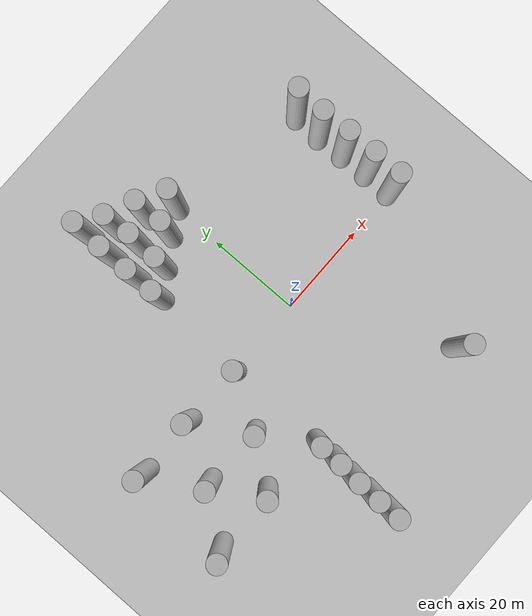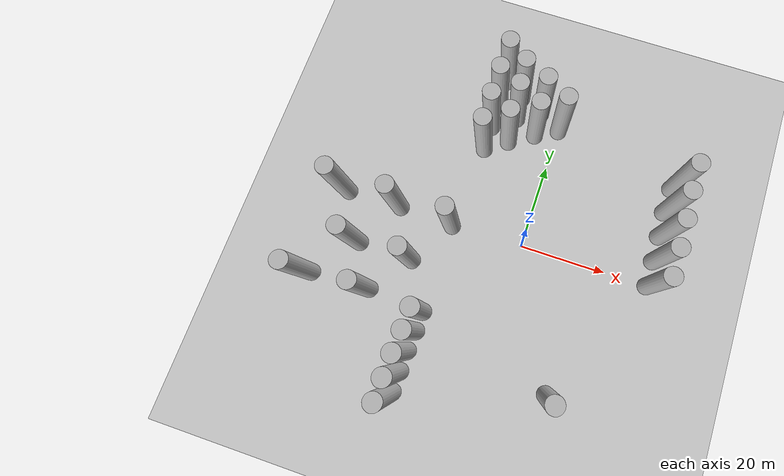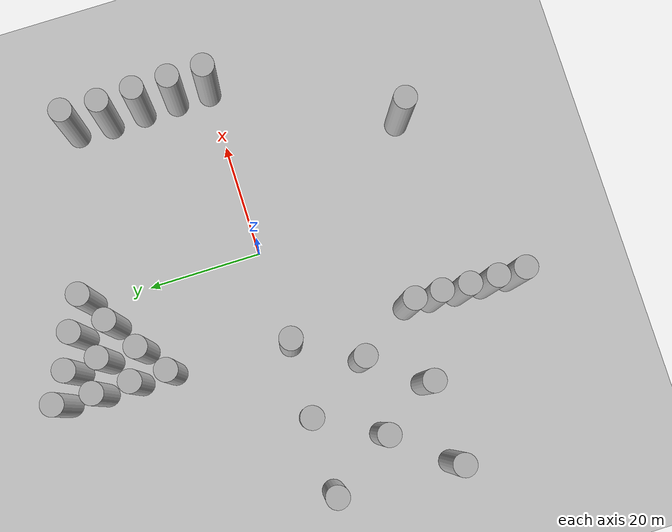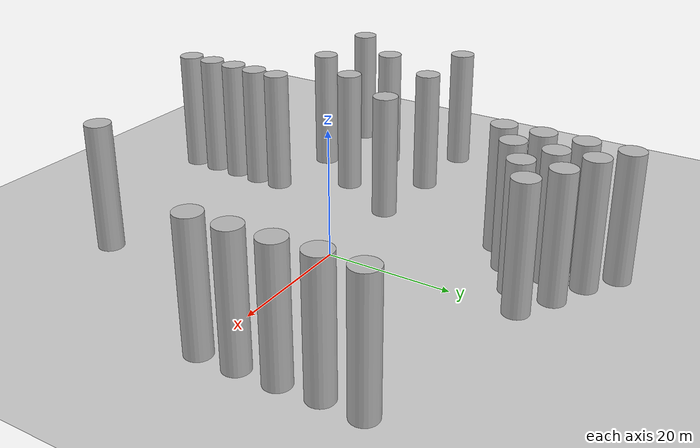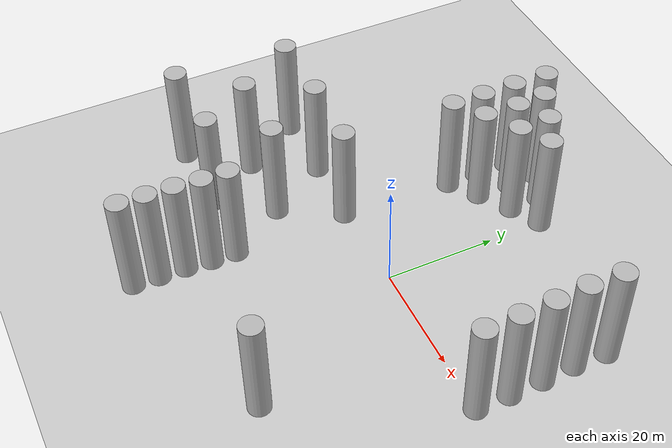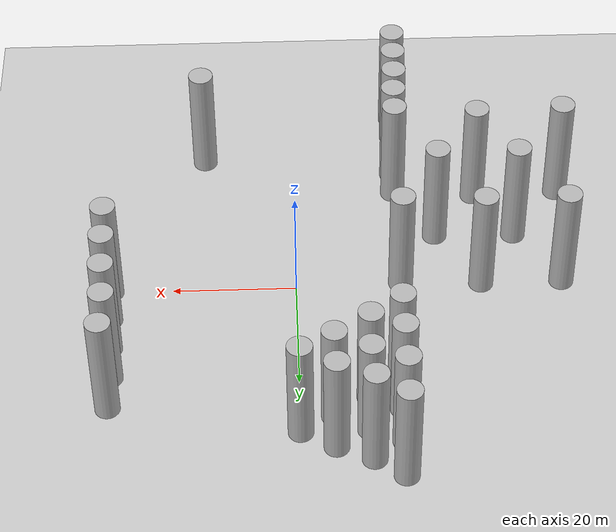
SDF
<sdf version="1.6">
 <world name="default">
  <scene><shadows>0</shadows><ambient>0.4 0.4 0.4 1</ambient><background>0.7 0.7 0.7 1</background></scene>
  <light name="sun" type="directional">
   <pose>0 0 10 0 -0 0</pose>
   <diffuse>0.8 0.8 0.8 1</diffuse>
   <specular>0.2 0.2 0.2 1</specular>
   <attenuation>
    <range>1000</range>
    <constant>0.9</constant>
    <linear>0.01</linear>
    <quadratic>0.001</quadratic>
   </attenuation>
   <direction>-0.5 0.1 -0.9</direction>
  </light>
  <model name="ground_plane">
   <static>1</static>
   <link name="link">
    <collision name="collision">
     <geometry><plane><normal>0 0 1</normal><size>100 100</size></plane></geometry>
     <surface><friction><ode><mu>100</mu><mu2>50</mu2></ode></friction></surface>
    </collision>
    <visual name="visual">
     <cast_shadows>0</cast_shadows>
     <geometry><plane><normal>0 0 1</normal><size>100 100</size></plane></geometry>
     <material>
      <script><uri>file://media/materials/scripts/gazebo.material</uri><name>Gazebo/Grey</name></script>
     </material>
    </visual>
   </link>
  </model>
  <model name="ground_plane">
   <static>1</static>
   <link name="link">
    <collision name="collision">
     <geometry><plane><normal>0 0 1</normal><size>100 100</size></plane></geometry>
     <surface><friction><ode><mu>100</mu><mu2>50</mu2></ode></friction></surface>
    </collision>
    <visual name="visual">
     <cast_shadows>0</cast_shadows>
     <geometry><plane><normal>0 0 1</normal><size>100 100</size></plane></geometry>
     <material>
      <script><uri>file://media/materials/scripts/gazebo.material</uri><name>Gazebo/Grey</name></script>
     </material>
    </visual>
   </link>
  </model>
  <model name="unit_cylinder_1">
   <static>1</static>
   <link name="link">
    <pose>0 0 10 0 -0 0</pose>
    <collision name="collision">
     <geometry><cylinder><radius>2</radius><length>20</length></cylinder></geometry>
    </collision>
    <visual name="visual"><geometry><cylinder><radius>2</radius><length>20</length></cylinder></geometry></visual>
   </link>
   <pose>15 -30 0 0 -0 0</pose>
  </model>
  <model name="unit_cylinder_2">
   <static>1</static>
   <link name="link">
    <pose>0 0 10 0 -0 0</pose>
    <collision name="collision">
     <geometry><cylinder><radius>2</radius><length>20</length></cylinder></geometry>
    </collision>
    <visual name="visual"><geometry><cylinder><radius>2</radius><length>20</length></cylinder></geometry></visual>
   </link>
   <pose>30 0 0 0 -0 0</pose>
  </model>
  <model name="unit_cylinder_3">
   <static>1</static>
   <link name="link">
    <pose>0 0 10 0 -0 0</pose>
    <collision name="collision">
     <geometry><cylinder><radius>2</radius><length>20</length></cylinder></geometry>
    </collision>
    <visual name="visual"><geometry><cylinder><radius>2</radius><length>20</length></cylinder></geometry></visual>
   </link>
   <pose>0 30 0 0 -0 0</pose>
  </model>
  <model name="unit_cylinder_4">
   <static>1</static>
   <link name="link">
    <pose>0 0 10 0 -0 0</pose>
    <collision name="collision">
     <geometry><cylinder><radius>2</radius><length>20</length></cylinder></geometry>
    </collision>
    <visual name="visual"><geometry><cylinder><radius>2</radius><length>20</length></cylinder></geometry></visual>
   </link>
   <pose>-30 0 0 0 -0 0</pose>
  </model>
  <gravity>0 0 -9.8</gravity>
  <magnetic_field>6e-06 2.3e-05 -4.2e-05</magnetic_field>
  <atmosphere type="adiabatic"/>
  <physics name="default_physics" default="0" type="ode">
   <max_step_size>0.001</max_step_size>
   <real_time_factor>1</real_time_factor>
   <real_time_update_rate>1000</real_time_update_rate>
  </physics>
  <audio><device>default</device></audio>
  <spherical_coordinates>
   <surface_model>EARTH_WGS84</surface_model>
   <latitude_deg>0</latitude_deg>
   <longitude_deg>0</longitude_deg>
   <elevation>0</elevation>
   <heading_deg>0</heading_deg>
  </spherical_coordinates>
  <model name="unit_cylinder_2_clone">
   <static>1</static>
   <link name="link">
    <pose>0 0 10 0 -0 0</pose>
    <collision name="collision">
     <geometry><cylinder><radius>2</radius><length>20</length></cylinder></geometry>
    </collision>
    <visual name="visual"><geometry><cylinder><radius>2</radius><length>20</length></cylinder></geometry></visual>
   </link>
   <pose>29.9802 6.03034 0 0 -0 0</pose>
  </model>
  <model name="unit_cylinder_2_clone_0">
   <static>1</static>
   <link name="link">
    <pose>0 0 10 0 -0 0</pose>
    <collision name="collision">
     <geometry><cylinder><radius>2</radius><length>20</length></cylinder></geometry>
    </collision>
    <visual name="visual"><geometry><cylinder><radius>2</radius><length>20</length></cylinder></geometry></visual>
   </link>
   <pose>29.8088 12.1248 0 0 -0 0</pose>
  </model>
  <model name="unit_cylinder_2_clone_1">
   <static>1</static>
   <link name="link">
    <pose>0 0 10 0 -0 0</pose>
    <collision name="collision">
     <geometry><cylinder><radius>2</radius><length>20</length></cylinder></geometry>
    </collision>
    <visual name="visual"><geometry><cylinder><radius>2</radius><length>20</length></cylinder></geometry></visual>
   </link>
   <pose>29.5008 18.1538 0 0 -0 0</pose>
  </model>
  <model name="unit_cylinder_2_clone_1_clone">
   <static>1</static>
   <link name="link">
    <pose>0 0 10 0 -0 0</pose>
    <collision name="collision">
     <geometry><cylinder><radius>2</radius><length>20</length></cylinder></geometry>
    </collision>
    <visual name="visual"><geometry><cylinder><radius>2</radius><length>20</length></cylinder></geometry></visual>
   </link>
   <pose>29.7126 24.2957 0 0 -0 0</pose>
  </model>
  <model name="unit_cylinder_2_clone_1_clone_0">
   <static>1</static>
   <link name="link">
    <pose>0 0 10 0 -0 0</pose>
    <collision name="collision">
     <geometry><cylinder><radius>2</radius><length>20</length></cylinder></geometry>
    </collision>
    <visual name="visual"><geometry><cylinder><radius>2</radius><length>20</length></cylinder></geometry></visual>
   </link>
   <pose>-5.3791 33.0461 0 0 -0 0</pose>
  </model>
  <model name="unit_cylinder_2_clone_1_clone_1">
   <static>1</static>
   <link name="link">
    <pose>0 0 10 0 -0 0</pose>
    <collision name="collision">
     <geometry><cylinder><radius>2</radius><length>20</length></cylinder></geometry>
    </collision>
    <visual name="visual"><geometry><cylinder><radius>2</radius><length>20</length></cylinder></geometry></visual>
   </link>
   <pose>-5.18838 27.1163 0 0 -0 0</pose>
  </model>
  <model name="unit_cylinder_2_clone_1_clone_2">
   <static>1</static>
   <link name="link">
    <pose>0 0 10 0 -0 0</pose>
    <collision name="collision">
     <geometry><cylinder><radius>2</radius><length>20</length></cylinder></geometry>
    </collision>
    <visual name="visual"><geometry><cylinder><radius>2</radius><length>20</length></cylinder></geometry></visual>
   </link>
   <pose>-11.0502 35.5543 0 0 -0 0</pose>
  </model>
  <model name="unit_cylinder_2_clone_1_clone_3">
   <static>1</static>
   <link name="link">
    <pose>0 0 10 0 -0 0</pose>
    <collision name="collision">
     <geometry><cylinder><radius>2</radius><length>20</length></cylinder></geometry>
    </collision>
    <visual name="visual"><geometry><cylinder><radius>2</radius><length>20</length></cylinder></geometry></visual>
   </link>
   <pose>-10.6247 29.9486 0 0 -0 0</pose>
  </model>
  <model name="unit_cylinder_2_clone_1_clone_4">
   <static>1</static>
   <link name="link">
    <pose>0 0 10 0 -0 0</pose>
    <collision name="collision">
     <geometry><cylinder><radius>2</radius><length>20</length></cylinder></geometry>
    </collision>
    <visual name="visual"><geometry><cylinder><radius>2</radius><length>20</length></cylinder></geometry></visual>
   </link>
   <pose>-10.7902 23.5692 0 0 -0 0</pose>
  </model>
  <model name="unit_cylinder_2_clone_1_clone_5">
   <static>1</static>
   <link name="link">
    <pose>0 0 10 0 -0 0</pose>
    <collision name="collision">
     <geometry><cylinder><radius>2</radius><length>20</length></cylinder></geometry>
    </collision>
    <visual name="visual"><geometry><cylinder><radius>2</radius><length>20</length></cylinder></geometry></visual>
   </link>
   <pose>-15.702 38.849 0 0 -0 0</pose>
  </model>
  <model name="unit_cylinder_2_clone_1_clone_6">
   <static>1</static>
   <link name="link">
    <pose>0 0 10 0 -0 0</pose>
    <collision name="collision">
     <geometry><cylinder><radius>2</radius><length>20</length></cylinder></geometry>
    </collision>
    <visual name="visual"><geometry><cylinder><radius>2</radius><length>20</length></cylinder></geometry></visual>
   </link>
   <pose>-15.8516 32.3302 0 0 -0 0</pose>
  </model>
  <model name="unit_cylinder_2_clone_1_clone_7">
   <static>1</static>
   <link name="link">
    <pose>0 0 10 0 -0 0</pose>
    <collision name="collision">
     <geometry><cylinder><radius>2</radius><length>20</length></cylinder></geometry>
    </collision>
    <visual name="visual"><geometry><cylinder><radius>2</radius><length>20</length></cylinder></geometry></visual>
   </link>
   <pose>-15.8119 26.002 0 0 -0 0</pose>
  </model>
  <model name="unit_cylinder_2_clone_1_clone_8">
   <static>1</static>
   <link name="link">
    <pose>0 0 10 0 -0 0</pose>
    <collision name="collision">
     <geometry><cylinder><radius>2</radius><length>20</length></cylinder></geometry>
    </collision>
    <visual name="visual"><geometry><cylinder><radius>2</radius><length>20</length></cylinder></geometry></visual>
   </link>
   <pose>-15.7772 19.9892 0 0 -0 0</pose>
  </model>
  <model name="unit_cylinder_4_clone">
   <static>1</static>
   <link name="link">
    <pose>0 0 10 0 -0 0</pose>
    <collision name="collision">
     <geometry><cylinder><radius>2</radius><length>20</length></cylinder></geometry>
    </collision>
    <visual name="visual"><geometry><cylinder><radius>2</radius><length>20</length></cylinder></geometry></visual>
   </link>
   <pose>-16.953 -0.50853 0 0 -0 0</pose>
  </model>
  <model name="unit_cylinder_4_clone_0">
   <static>1</static>
   <link name="link">
    <pose>0 0 10 0 -0 0</pose>
    <collision name="collision">
     <geometry><cylinder><radius>2</radius><length>20</length></cylinder></geometry>
    </collision>
    <visual name="visual"><geometry><cylinder><radius>2</radius><length>20</length></cylinder></geometry></visual>
   </link>
   <pose>-43.1153 -0.100268 0 0 -0 0</pose>
  </model>
  <model name="unit_cylinder_4_clone_1">
   <static>1</static>
   <link name="link">
    <pose>0 0 10 0 -0 0</pose>
    <collision name="collision">
     <geometry><cylinder><radius>2</radius><length>20</length></cylinder></geometry>
    </collision>
    <visual name="visual"><geometry><cylinder><radius>2</radius><length>20</length></cylinder></geometry></visual>
   </link>
   <pose>-23.1585 -11.0697 0 0 -0 0</pose>
  </model>
  <model name="unit_cylinder_4_clone_1_clone">
   <static>1</static>
   <link name="link">
    <pose>0 0 10 0 -0 0</pose>
    <collision name="collision">
     <geometry><cylinder><radius>2</radius><length>20</length></cylinder></geometry>
    </collision>
    <visual name="visual"><geometry><cylinder><radius>2</radius><length>20</length></cylinder></geometry></visual>
   </link>
   <pose>-36.2013 -10.8651 0 0 -0 0</pose>
  </model>
  <model name="unit_cylinder_4_clone_1_clone_clone">
   <static>1</static>
   <link name="link">
    <pose>0 0 10 0 -0 0</pose>
    <collision name="collision">
     <geometry><cylinder><radius>2</radius><length>20</length></cylinder></geometry>
    </collision>
    <visual name="visual"><geometry><cylinder><radius>2</radius><length>20</length></cylinder></geometry></visual>
   </link>
   <pose>-44.2721 -20.833 0 0 -0 0</pose>
  </model>
  <model name="unit_cylinder_4_clone_1_clone_clone_clone">
   <static>1</static>
   <link name="link">
    <pose>0 0 10 0 -0 0</pose>
    <collision name="collision">
     <geometry><cylinder><radius>2</radius><length>20</length></cylinder></geometry>
    </collision>
    <visual name="visual"><geometry><cylinder><radius>2</radius><length>20</length></cylinder></geometry></visual>
   </link>
   <pose>-30.1616 -20.3455 0 0 -0 0</pose>
  </model>
  <model name="unit_cylinder_4_clone_1_clone_clone_clone_clone">
   <static>1</static>
   <link name="link">
    <pose>0 0 10 0 -0 0</pose>
    <collision name="collision">
     <geometry><cylinder><radius>2</radius><length>20</length></cylinder></geometry>
    </collision>
    <visual name="visual"><geometry><cylinder><radius>2</radius><length>20</length></cylinder></geometry></visual>
   </link>
   <pose>-16.7059 -21.4036 0 0 -0 0</pose>
  </model>
  <model name="unit_cylinder_4_clone_1_clone_clone_clone_clone_clone">
   <static>1</static>
   <link name="link">
    <pose>0 0 10 0 -0 0</pose>
    <collision name="collision">
     <geometry><cylinder><radius>2</radius><length>20</length></cylinder></geometry>
    </collision>
    <visual name="visual"><geometry><cylinder><radius>2</radius><length>20</length></cylinder></geometry></visual>
   </link>
   <pose>-16.7654 -25.9555 0 0 -0 0</pose>
  </model>
  <model name="unit_cylinder_4_clone_1_clone_clone_clone_clone_clone_0">
   <static>1</static>
   <link name="link">
    <pose>0 0 10 0 -0 0</pose>
    <collision name="collision">
     <geometry><cylinder><radius>2</radius><length>20</length></cylinder></geometry>
    </collision>
    <visual name="visual"><geometry><cylinder><radius>2</radius><length>20</length></cylinder></geometry></visual>
   </link>
   <pose>-17.0731 -30.5981 0 0 -0 0</pose>
  </model>
  <model name="unit_cylinder_4_clone_1_clone_clone_clone_clone_clone_1">
   <static>1</static>
   <link name="link">
    <pose>0 0 10 0 -0 0</pose>
    <collision name="collision">
     <geometry><cylinder><radius>2</radius><length>20</length></cylinder></geometry>
    </collision>
    <visual name="visual"><geometry><cylinder><radius>2</radius><length>20</length></cylinder></geometry></visual>
   </link>
   <pose>-17.181 -35.3232 0 0 -0 0</pose>
  </model>
  <model name="unit_cylinder_4_clone_1_clone_clone_clone_clone_clone_1_clone">
   <static>1</static>
   <link name="link">
    <pose>0 0 10 0 -0 0</pose>
    <collision name="collision">
     <geometry><cylinder><radius>2</radius><length>20</length></cylinder></geometry>
    </collision>
    <visual name="visual"><geometry><cylinder><radius>2</radius><length>20</length></cylinder></geometry></visual>
   </link>
   <pose>-17.2561 -39.9743 0 0 -0 0</pose>
  </model>
 </world>
</sdf>
